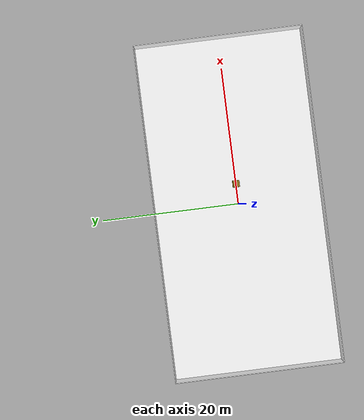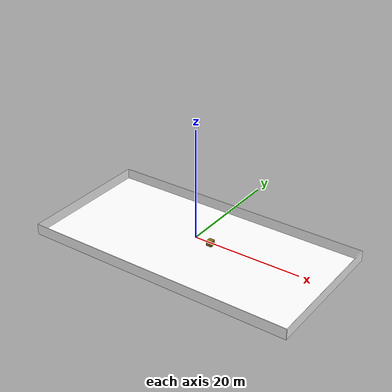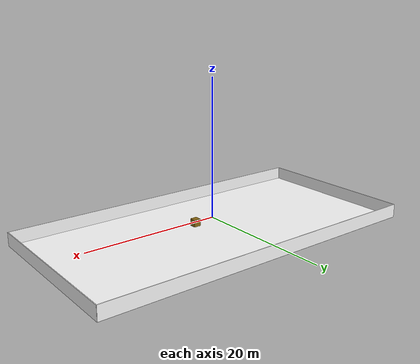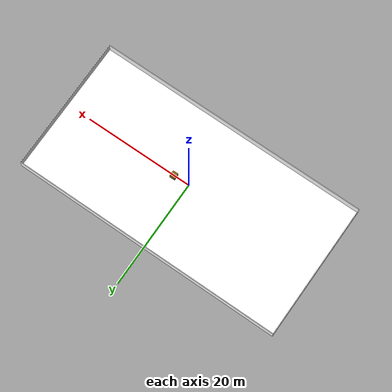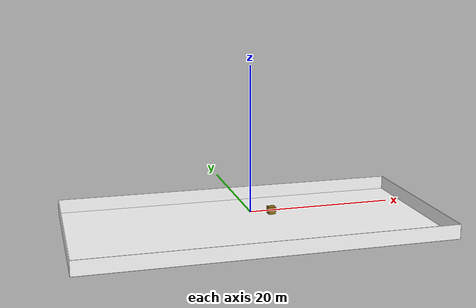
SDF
<sdf version="1.11">
 <world name="test_sea">
  <physics name="1ms" type="ode">
   <max_step_size>0.001</max_step_size>
   <real_time_factor>1.0</real_time_factor>
  </physics>
  <plugin filename="gz-sim-physics-system" name="gz::sim::systems::Physics"/>
  <plugin filename="gz-sim-user-commands-system" name="gz::sim::systems::UserCommands"/>
  <plugin filename="gz-sim-scene-broadcaster-system" name="gz::sim::systems::SceneBroadcaster"/>
  <plugin filename="gz-sim-buoyancy-system" name="gz::sim::systems::Buoyancy">
   <graded_buoyancy>
    <default_density>1000</default_density>
    <density_change><above_depth>0</above_depth><density>1</density></density_change>
   </graded_buoyancy>
  </plugin>
  <plugin filename="gz-sim-imu-system" name="gz::sim::systems::Imu"/>
  <plugin filename="gz-sim-altimeter-system" name="gz::sim::systems::Altimeter"/>
  <plugin filename="gz-sim-sensors-system" name="gz::sim::systems::Sensors">
   <render_engine>ogre2</render_engine>
  </plugin>
  <light type="directional" name="sun">
   <pose>0 0 10 0 0 0</pose>
   <diffuse>0.8 0.8 0.8 1</diffuse>
   <specular>0.2 0.2 0.2 1</specular>
   <attenuation>
    <range>1000</range>
    <constant>0.9</constant>
    <linear>0.01</linear>
    <quadratic>0.001</quadratic>
   </attenuation>
   <direction>-0.5 0.1 -0.9</direction>
  </light>
  <include><name>pool</name><uri>model://swimming_pool</uri></include>
  <model name="horizontal_plane">
   <static>true</static>
   <pose>0 0 -2.5 0 0 0</pose>
   <link name="link">
    <visual name="visual">
     <geometry><plane><normal>0 0 1</normal><size>300000 300000</size></plane></geometry>
     <transparency>1.0</transparency>
    </visual>
   </link>
  </model>
  <include><name>cube</name><pose>3 0 0 0 0 0</pose><uri>model://wood_cube</uri></include>
 </world>
</sdf>

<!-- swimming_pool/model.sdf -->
<sdf version="1.5">
  <model name="swimming_pool">
    <static>true</static>
    <link name="link">
      <visual name="ground">
        <cast_shadows>false</cast_shadows>
        <pose>0 0 -2 0 0 0</pose>
        <geometry>
          <box>
            <size>50 25 .1</size>
          </box>
        </geometry>
        <material>
          <ambient>1.0 1.0 1.0 1.0</ambient>
          <diffuse>1.0 1.0 1.0 1.0</diffuse>
          <pbr>
            <metal>
              <albedo_map>swimming_pool_tile.png</albedo_map>
              <roughness>0.1</roughness>
              <metalness>0.0</metalness>
            </metal>
          </pbr>
        </material>
      </visual>

      <collision name="ground">
        <pose>0 0 -2 0 0 0</pose>
        <geometry>
          <box>
            <size>50 25 .1</size>
          </box>
        </geometry>
      </collision>
      <collision name="north">
        <pose>25 0 -1 0 0 0</pose>
        <geometry>
          <box>
            <size>.1 25 2</size>
          </box>
        </geometry>
      </collision>
      <collision name="south">
        <pose>-25 0 -1 0 0 0</pose>
        <geometry>
          <box>
            <size>.1 25 2</size>
          </box>
        </geometry>
      </collision>
      <collision name="east">
        <pose>0 -12.5 -1 0 0 0</pose>
        <geometry>
          <box>
            <size>50 .1 2</size>
          </box>
        </geometry>
      </collision>
      <collision name="west">
        <pose>0 12.5 -1 0 0 0</pose>
        <geometry>
          <box>
            <size>50 .1 2</size>
          </box>
        </geometry>
      </collision>

      <visual name="north">
        <cast_shadows>false</cast_shadows>
        <pose>25 0 -1 0 0 0</pose>
        <geometry>
          <box>
            <size>.1 25 2</size>
          </box>
        </geometry>
        <material>
          <ambient>1.0 1.0 1.0 1.0</ambient>
          <diffuse>1.0 1.0 1.0 1.0</diffuse>
          <pbr>
            <metal>
              <albedo_map>swimming_pool_tile.png</albedo_map>
              <roughness>0.1</roughness>
              <metalness>0.0</metalness>
            </metal>
          </pbr>
        </material>
      </visual>

      <visual name="south">
        <cast_shadows>false</cast_shadows>
        <pose>-25 0 -1 0 0 0</pose>
        <geometry>
          <box>
            <size>.1 25 2</size>
          </box>
        </geometry>
        <material>
          <ambient>1.0 1.0 1.0 1.0</ambient>
          <diffuse>1.0 1.0 1.0 1.0</diffuse>
          <pbr>
            <metal>
              <albedo_map>swimming_pool_tile.png</albedo_map>
              <roughness>0.1</roughness>
              <metalness>0.0</metalness>
            </metal>
          </pbr>
        </material>
      </visual>

      <visual name="east">
        <cast_shadows>false</cast_shadows>
        <pose>0 -12.5 -1 0 0 0</pose>
        <geometry>
          <box>
            <size>50 .1 2</size>
          </box>
        </geometry>
        <material>
          <ambient>1.0 1.0 1.0 1.0</ambient>
          <diffuse>1.0 1.0 1.0 1.0</diffuse>
          <pbr>
            <metal>
              <albedo_map>swimming_pool_tile.png</albedo_map>
              <roughness>0.1</roughness>
              <metalness>0.0</metalness>
            </metal>
          </pbr>
        </material>
      </visual>

      <visual name="west">
        <cast_shadows>false</cast_shadows>
        <pose>0 12.5 -1 0 0 0</pose>
        <geometry>
          <box>
            <size>50 .1 2</size>
          </box>
        </geometry>
        <material>
          <ambient>1.0 1.0 1.0 1.0</ambient>
          <diffuse>1.0 1.0 1.0 1.0</diffuse>
          <pbr>
            <metal>
              <albedo_map>swimming_pool_tile.png</albedo_map>
              <roughness>0.1</roughness>
              <metalness>0.0</metalness>
            </metal>
          </pbr>
        </material>
      </visual>
    </link>
  </model>
</sdf>

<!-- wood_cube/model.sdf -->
<sdf version="1.11">
  <model name="wood_block">
    <pose>0 0 0.5 0 0 0</pose>
    <link name="link">
      <inertial>
        <mass>529</mass>
        <inertia>
          <!-- inertias are tricky to compute -->
          <!-- http://gazebosim.org/tutorials?tut=inertia&cat=build_robot -->
          <ixx>44</ixx>     <!-- for a box: ixx = 0.083 * mass * (y*y + z*z) -->
          <ixy>0.0</ixy>    <!-- for a box: ixy = 0 -->
          <ixz>0.0</ixz>    <!-- for a box: ixz = 0 -->
          <iyy>44</iyy>     <!-- for a box: iyy = 0.083 * mass * (x*x + z*z) -->
          <iyz>0.0</iyz>    <!-- for a box: iyz = 0 -->
          <izz>44</izz>     <!-- for a box: izz = 0.083 * mass * (x*x + y*y) -->
        </inertia>
      </inertial>
      <collision name="collision">
        <geometry>
          <box>
            <size>1 1 1</size>
          </box>
        </geometry>
      </collision>
      <visual name="visual">
        <geometry>
          <box>
            <size>1 1 1</size>
          </box>
        </geometry>
        <material>
          <ambient>0.545 0.412 0.078 1.0</ambient>
          <diffuse>0.545 0.412 0.078 1.0</diffuse>
        </material>
      </visual>
    </link>
  </model>
</sdf>
